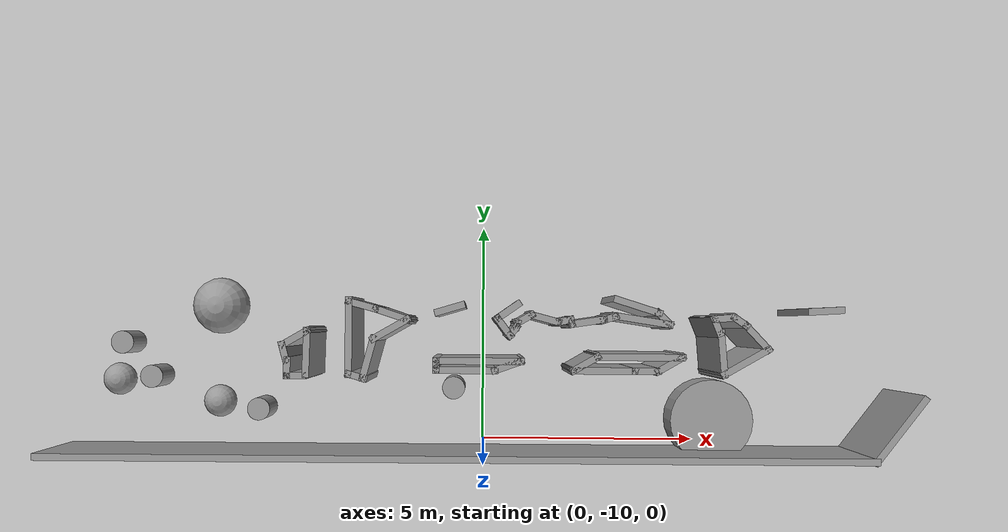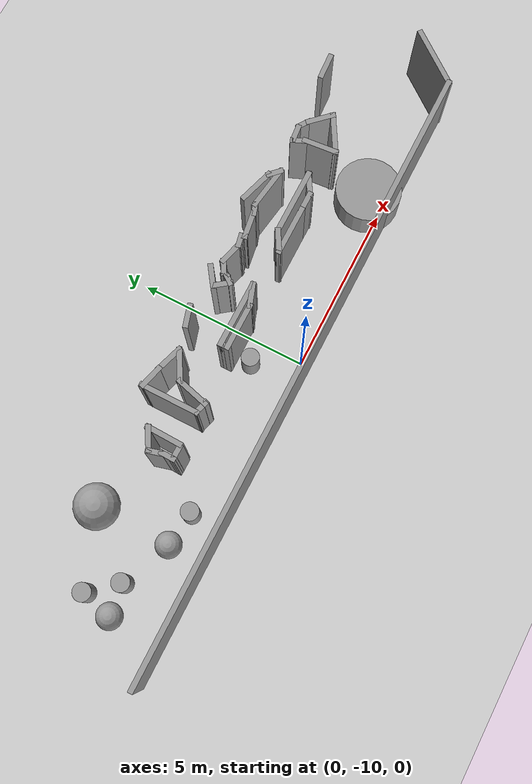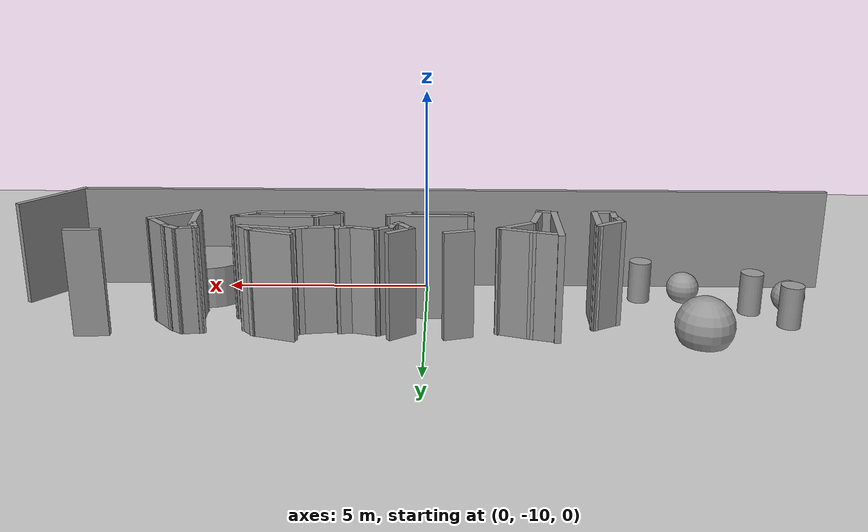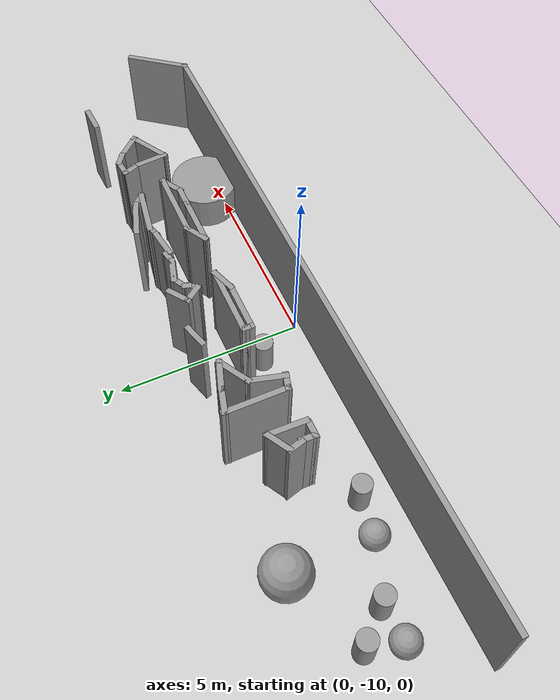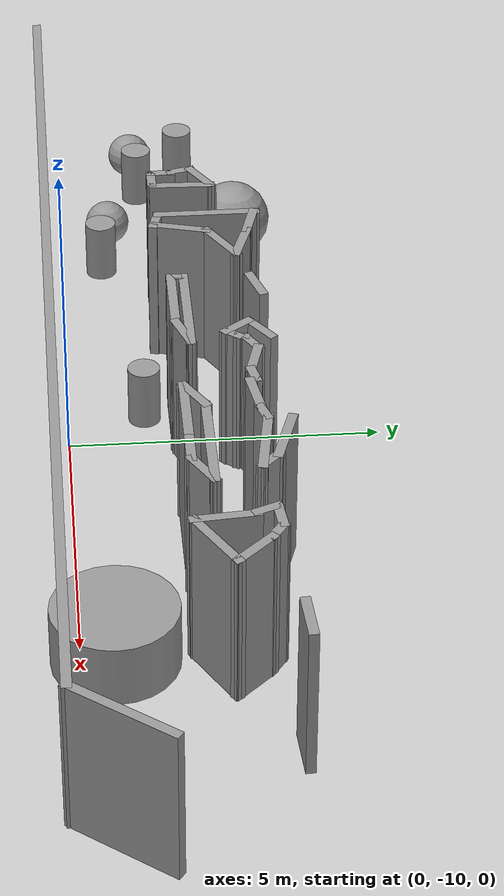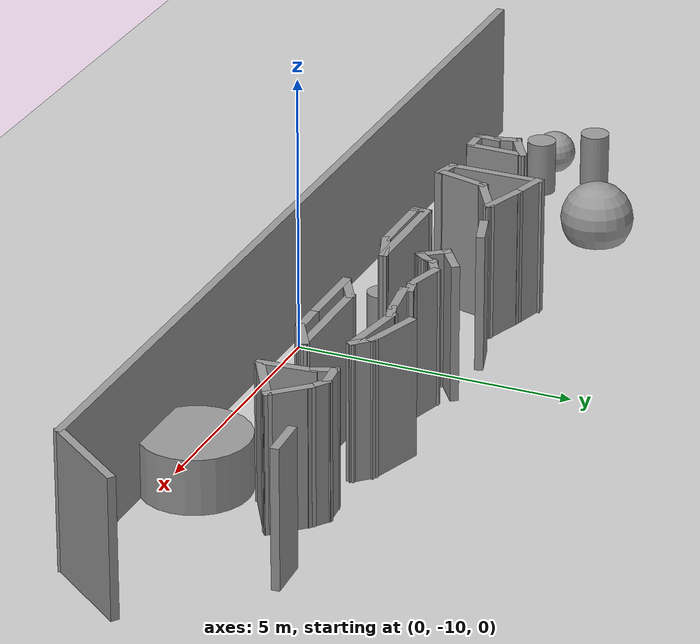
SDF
<sdf version="1.7">
 <world name="default">
  <model name="ground_plane">
   <static>1</static>
   <link name="link">
    <collision name="collision">
     <geometry><plane><normal>0 0 1</normal><size>100 100</size></plane></geometry>
     <surface>
      <contact><collide_bitmask>65535</collide_bitmask></contact>
      <friction><ode><mu>100</mu><mu2>50</mu2></ode></friction>
     </surface>
    </collision>
    <visual name="visual">
     <cast_shadows>0</cast_shadows>
     <geometry><plane><normal>0 0 1</normal><size>100 100</size></plane></geometry>
     <material>
      <script><uri>file://media/materials/scripts/gazebo.material</uri><name>Gazebo/Grey</name></script>
     </material>
    </visual>
   </link>
  </model>
  <model name="Untitled">
   <pose>-0.048209 -0.510974 0 0 -0 0</pose>
   <link name="Wall_103">
    <collision name="Wall_103_Collision">
     <geometry><box><size>0.488036 0.15 2.5</size></box></geometry>
     <pose>0 0 1.25 0 -0 0</pose>
    </collision>
    <visual name="Wall_103_Visual">
     <pose>0 0 1.25 0 -0 0</pose>
     <geometry><box><size>0.488036 0.15 2.5</size></box></geometry>
     <material>
      <script><uri>file://media/materials/scripts/gazebo.material</uri><name>Gazebo/Grey</name></script>
      <ambient>1 1 1 1</ambient>
     </material>
     <meta><layer>0</layer></meta>
    </visual>
    <pose>-4.23485 -7.73922 0 0 -0 -1.59502</pose>
   </link>
   <link name="Wall_109">
    <collision name="Wall_109_Collision">
     <geometry><box><size>1.0417 0.15 2.5</size></box></geometry>
     <pose>0 0 1.25 0 -0 0</pose>
    </collision>
    <visual name="Wall_109_Visual">
     <pose>0 0 1.25 0 -0 0</pose>
     <geometry><box><size>1.0417 0.15 2.5</size></box></geometry>
     <material>
      <script><uri>file://media/materials/scripts/gazebo.material</uri><name>Gazebo/Grey</name></script>
      <ambient>1 1 1 1</ambient>
     </material>
     <meta><layer>0</layer></meta>
    </visual>
    <pose>-2.47028 -7.52497 0 0 -0 -1.83459</pose>
   </link>
   <link name="Wall_11">
    <collision name="Wall_11_Collision">
     <geometry><box><size>18.5 0.15 2.5</size></box></geometry>
     <pose>0 0 1.25 0 -0 0</pose>
    </collision>
    <visual name="Wall_11_Visual">
     <pose>0 0 1.25 0 -0 0</pose>
     <geometry><box><size>18.5 0.15 2.5</size></box></geometry>
     <material>
      <script><uri>file://media/materials/scripts/gazebo.material</uri><name>Gazebo/Grey</name></script>
      <ambient>1 1 1 1</ambient>
     </material>
     <meta><layer>0</layer></meta>
    </visual>
    <pose>-0.53701 -9.71572 0 0 -0 3.14159</pose>
   </link>
   <link name="Wall_110">
    <collision name="Wall_110_Collision">
     <geometry><box><size>0.5 0.15 2.5</size></box></geometry>
     <pose>0 0 1.25 0 -0 0</pose>
    </collision>
    <visual name="Wall_110_Visual">
     <pose>0 0 1.25 0 -0 0</pose>
     <geometry><box><size>0.5 0.15 2.5</size></box></geometry>
     <material>
      <script><uri>file://media/materials/scripts/gazebo.material</uri><name>Gazebo/Grey</name></script>
      <ambient>1 1 1 1</ambient>
     </material>
     <meta><layer>0</layer></meta>
    </visual>
    <pose>-2.72574 -7.9101 0 0 -0 2.87979</pose>
   </link>
   <link name="Wall_111">
    <collision name="Wall_111_Collision">
     <geometry><box><size>1.76019 0.15 2.5</size></box></geometry>
     <pose>0 0 1.25 0 -0 0</pose>
    </collision>
    <visual name="Wall_111_Visual">
     <pose>0 0 1.25 0 -0 0</pose>
     <geometry><box><size>1.76019 0.15 2.5</size></box></geometry>
     <material>
      <script><uri>file://media/materials/scripts/gazebo.material</uri><name>Gazebo/Grey</name></script>
      <ambient>1 1 1 1</ambient>
     </material>
     <meta><layer>0</layer></meta>
    </visual>
    <pose>-2.89443 -7.05971 0 0 -0 1.57037</pose>
   </link>
   <link name="Wall_113">
    <collision name="Wall_113_Collision">
     <geometry><box><size>1 0.15 2.5</size></box></geometry>
     <pose>0 0 1.25 0 -0 0</pose>
    </collision>
    <visual name="Wall_113_Visual">
     <pose>0 0 1.25 0 -0 0</pose>
     <geometry><box><size>1 0.15 2.5</size></box></geometry>
     <material>
      <script><uri>file://media/materials/scripts/gazebo.material</uri><name>Gazebo/Grey</name></script>
      <ambient>1 1 1 1</ambient>
     </material>
     <meta><layer>0</layer></meta>
    </visual>
    <pose>-1.98596 -6.88204 0 0 -0 -2.61799</pose>
   </link>
   <link name="Wall_120">
    <collision name="Wall_120_Collision">
     <geometry><box><size>0.25 0.15 2.5</size></box></geometry>
     <pose>0 0 1.25 0 -0 0</pose>
    </collision>
    <visual name="Wall_120_Visual">
     <pose>0 0 1.25 0 -0 0</pose>
     <geometry><box><size>0.25 0.15 2.5</size></box></geometry>
     <material>
      <script><uri>file://media/materials/scripts/gazebo.material</uri><name>Gazebo/Grey</name></script>
      <ambient>1 1 1 1</ambient>
     </material>
     <meta><layer>0</layer></meta>
    </visual>
    <pose>-0.982432 -7.71789 0 0 -0 1.5708</pose>
   </link>
   <link name="Wall_121">
    <collision name="Wall_121_Collision">
     <geometry><box><size>0.25 0.15 2.5</size></box></geometry>
     <pose>0 0 1.25 0 -0 0</pose>
    </collision>
    <visual name="Wall_121_Visual">
     <pose>0 0 1.25 0 -0 0</pose>
     <geometry><box><size>0.25 0.15 2.5</size></box></geometry>
     <material>
      <script><uri>file://media/materials/scripts/gazebo.material</uri><name>Gazebo/Grey</name></script>
      <ambient>1 1 1 1</ambient>
     </material>
     <meta><layer>0</layer></meta>
    </visual>
    <pose>-0.982432 -7.61789 0 0 -0 1.5708</pose>
   </link>
   <link name="Wall_122">
    <collision name="Wall_122_Collision">
     <geometry><box><size>2 0.15 2.5</size></box></geometry>
     <pose>0 0 1.25 0 -0 0</pose>
    </collision>
    <visual name="Wall_122_Visual">
     <pose>0 0 1.25 0 -0 0</pose>
     <geometry><box><size>2 0.15 2.5</size></box></geometry>
     <material>
      <script><uri>file://media/materials/scripts/gazebo.material</uri><name>Gazebo/Grey</name></script>
      <ambient>1 1 1 1</ambient>
     </material>
     <meta><layer>0</layer></meta>
    </visual>
    <pose>-0.057432 -7.56789 0 0 -0 0</pose>
   </link>
   <link name="Wall_123">
    <collision name="Wall_123_Collision">
     <geometry><box><size>0.753289 0.15 2.5</size></box></geometry>
     <pose>0 0 1.25 0 -0 0</pose>
    </collision>
    <visual name="Wall_123_Visual">
     <pose>0 0 1.25 0 -0 0</pose>
     <geometry><box><size>0.753289 0.15 2.5</size></box></geometry>
     <material>
      <script><uri>file://media/materials/scripts/gazebo.material</uri><name>Gazebo/Grey</name></script>
      <ambient>1 1 1 1</ambient>
     </material>
     <meta><layer>0</layer></meta>
    </visual>
    <pose>0.582982 -7.66789 0 0 -0 -2.80368</pose>
   </link>
   <link name="Wall_125">
    <collision name="Wall_125_Collision">
     <geometry><box><size>0.75 0.15 2.5</size></box></geometry>
     <pose>0 0 1.25 0 -0 0</pose>
    </collision>
    <visual name="Wall_125_Visual">
     <pose>0 0 1.25 0 -0 0</pose>
     <geometry><box><size>0.75 0.15 2.5</size></box></geometry>
     <material>
      <script><uri>file://media/materials/scripts/gazebo.material</uri><name>Gazebo/Grey</name></script>
      <ambient>1 1 1 1</ambient>
     </material>
     <meta><layer>0</layer></meta>
    </visual>
    <pose>2.27315 -7.61311 0 0 -0 0.523599</pose>
   </link>
   <link name="Wall_126">
    <collision name="Wall_126_Collision">
     <geometry><box><size>2 0.15 2.5</size></box></geometry>
     <pose>0 0 1.25 0 -0 0</pose>
    </collision>
    <visual name="Wall_126_Visual">
     <pose>0 0 1.25 0 -0 0</pose>
     <geometry><box><size>2 0.15 2.5</size></box></geometry>
     <material>
      <script><uri>file://media/materials/scripts/gazebo.material</uri><name>Gazebo/Grey</name></script>
      <ambient>1 1 1 1</ambient>
     </material>
     <meta><layer>0</layer></meta>
    </visual>
    <pose>3.45796 -7.46311 0 0 -0 0</pose>
   </link>
   <link name="Wall_127">
    <collision name="Wall_127_Collision">
     <geometry><box><size>0.75 0.15 2.5</size></box></geometry>
     <pose>0 0 1.25 0 -0 0</pose>
    </collision>
    <visual name="Wall_127_Visual">
     <pose>0 0 1.25 0 -0 0</pose>
     <geometry><box><size>0.75 0.15 2.5</size></box></geometry>
     <material>
      <script><uri>file://media/materials/scripts/gazebo.material</uri><name>Gazebo/Grey</name></script>
      <ambient>1 1 1 1</ambient>
     </material>
     <meta><layer>0</layer></meta>
    </visual>
    <pose>4.12315 -7.61311 0 0 -0 -2.61799</pose>
   </link>
   <link name="Wall_128">
    <collision name="Wall_128_Collision">
     <geometry><box><size>0.65 0.15 2.5</size></box></geometry>
     <pose>0 0 1.25 0 -0 0</pose>
    </collision>
    <visual name="Wall_128_Visual">
     <pose>0 0 1.25 0 -0 0</pose>
     <geometry><box><size>0.65 0.15 2.5</size></box></geometry>
     <material>
      <script><uri>file://media/materials/scripts/gazebo.material</uri><name>Gazebo/Grey</name></script>
      <ambient>1 1 1 1</ambient>
     </material>
     <meta><layer>0</layer></meta>
    </visual>
    <pose>3.61334 -7.76311 0 0 -0 3.14159</pose>
   </link>
   <link name="Wall_14">
    <collision name="Wall_14_Collision">
     <geometry><box><size>1.5 0.15 2.5</size></box></geometry>
     <pose>0 0 1.25 0 -0 0</pose>
    </collision>
    <visual name="Wall_14_Visual">
     <pose>0 0 1.25 0 -0 0</pose>
     <geometry><box><size>1.5 0.15 2.5</size></box></geometry>
     <material>
      <script><uri>file://media/materials/scripts/gazebo.material</uri><name>Gazebo/Grey</name></script>
      <ambient>1 1 1 1</ambient>
     </material>
     <meta><layer>0</layer></meta>
    </visual>
    <pose>2.68834 -7.76311 0 0 -0 0</pose>
   </link>
   <link name="Wall_140">
    <collision name="Wall_140_Collision">
     <geometry><box><size>0.45593 0.15 2.5</size></box></geometry>
     <pose>0 0 1.25 0 -0 0</pose>
    </collision>
    <visual name="Wall_140_Visual">
     <pose>0 0 1.25 0 -0 0</pose>
     <geometry><box><size>0.45593 0.15 2.5</size></box></geometry>
     <material>
      <script><uri>file://media/materials/scripts/gazebo.material</uri><name>Gazebo/Grey</name></script>
      <ambient>1 1 1 1</ambient>
     </material>
     <meta><layer>0</layer></meta>
    </visual>
    <pose>5.64164 -6.67189 0 0 -0 2.53262</pose>
   </link>
   <link name="Wall_145">
    <collision name="Wall_145_Collision">
     <geometry><box><size>0.542134 0.15 2.5</size></box></geometry>
     <pose>0 0 1.25 0 -0 0</pose>
    </collision>
    <visual name="Wall_145_Visual">
     <pose>0 0 1.25 0 -0 0</pose>
     <geometry><box><size>0.542134 0.15 2.5</size></box></geometry>
     <material>
      <script><uri>file://media/materials/scripts/gazebo.material</uri><name>Gazebo/Grey</name></script>
      <ambient>1 1 1 1</ambient>
     </material>
     <meta><layer>0</layer></meta>
    </visual>
    <pose>5.29497 -6.6036 0 0 -0 -3.04348</pose>
   </link>
   <link name="Wall_146">
    <collision name="Wall_146_Collision">
     <geometry><box><size>0.477049 0.15 2.5</size></box></geometry>
     <pose>0 0 1.25 0 -0 0</pose>
    </collision>
    <visual name="Wall_146_Visual">
     <pose>0 0 1.25 0 -0 0</pose>
     <geometry><box><size>0.477049 0.15 2.5</size></box></geometry>
     <material>
      <script><uri>file://media/materials/scripts/gazebo.material</uri><name>Gazebo/Grey</name></script>
      <ambient>1 1 1 1</ambient>
     </material>
     <meta><layer>0</layer></meta>
    </visual>
    <pose>5.13517 -6.77435 0 0 -0 -1.1858</pose>
   </link>
   <link name="Wall_147">
    <collision name="Wall_147_Collision">
     <geometry><box><size>1.05556 0.15 2.5</size></box></geometry>
     <pose>0 0 1.25 0 -0 0</pose>
    </collision>
    <visual name="Wall_147_Visual">
     <pose>0 0 1.25 0 -0 0</pose>
     <geometry><box><size>1.05556 0.15 2.5</size></box></geometry>
     <material>
      <script><uri>file://media/materials/scripts/gazebo.material</uri><name>Gazebo/Grey</name></script>
      <ambient>1 1 1 1</ambient>
     </material>
     <meta><layer>0</layer></meta>
    </visual>
    <pose>5.2618 -7.377 0 0 -0 -1.48427</pose>
   </link>
   <link name="Wall_148">
    <collision name="Wall_148_Collision">
     <geometry><box><size>1.25 0.15 2.5</size></box></geometry>
     <pose>0 0 1.25 0 -0 0</pose>
    </collision>
    <visual name="Wall_148_Visual">
     <pose>0 0 1.25 0 -0 0</pose>
     <geometry><box><size>1.25 0.15 2.5</size></box></geometry>
     <material>
      <script><uri>file://media/materials/scripts/gazebo.material</uri><name>Gazebo/Grey</name></script>
      <ambient>1 1 1 1</ambient>
     </material>
     <meta><layer>0</layer></meta>
    </visual>
    <pose>5.77724 -7.55308 0 0 -0 0.523599</pose>
   </link>
   <link name="Wall_159">
    <collision name="Wall_159_Collision">
     <geometry><box><size>0.692591 0.15 2.5</size></box></geometry>
     <pose>0 0 1.25 0 -0 0</pose>
    </collision>
    <visual name="Wall_159_Visual">
     <pose>0 0 1.25 0 -0 0</pose>
     <geometry><box><size>0.692591 0.15 2.5</size></box></geometry>
     <material>
      <script><uri>file://media/materials/scripts/gazebo.material</uri><name>Gazebo/Grey</name></script>
      <ambient>1 1 1 1</ambient>
     </material>
     <meta><layer>0</layer></meta>
    </visual>
    <pose>-0.694153 -6.4286 0 0 -0 0.290262</pose>
   </link>
   <link name="Wall_164">
    <collision name="Wall_164_Collision">
     <geometry><box><size>0.611635 0.15 2.5</size></box></geometry>
     <pose>0 0 1.25 0 -0 0</pose>
    </collision>
    <visual name="Wall_164_Visual">
     <pose>0 0 1.25 0 -0 0</pose>
     <geometry><box><size>0.611635 0.15 2.5</size></box></geometry>
     <material>
      <script><uri>file://media/materials/scripts/gazebo.material</uri><name>Gazebo/Grey</name></script>
      <ambient>1 1 1 1</ambient>
     </material>
     <meta><layer>0</layer></meta>
    </visual>
    <pose>0.490586 -6.82526 0 0 -0 -0.928742</pose>
   </link>
   <link name="Wall_165">
    <collision name="Wall_165_Collision">
     <geometry><box><size>0.385134 0.15 2.5</size></box></geometry>
     <pose>0 0 1.25 0 -0 0</pose>
    </collision>
    <visual name="Wall_165_Visual">
     <pose>0 0 1.25 0 -0 0</pose>
     <geometry><box><size>0.385134 0.15 2.5</size></box></geometry>
     <material>
      <script><uri>file://media/materials/scripts/gazebo.material</uri><name>Gazebo/Grey</name></script>
      <ambient>1 1 1 1</ambient>
     </material>
     <meta><layer>0</layer></meta>
    </visual>
    <pose>0.691599 -6.91768 0 0 -0 0.904641</pose>
   </link>
   <link name="Wall_166">
    <collision name="Wall_166_Collision">
     <geometry><box><size>0.25 0.15 2.5</size></box></geometry>
     <pose>0 0 1.25 0 -0 0</pose>
    </collision>
    <visual name="Wall_166_Visual">
     <pose>0 0 1.25 0 -0 0</pose>
     <geometry><box><size>0.25 0.15 2.5</size></box></geometry>
     <material>
      <script><uri>file://media/materials/scripts/gazebo.material</uri><name>Gazebo/Grey</name></script>
      <ambient>1 1 1 1</ambient>
     </material>
     <meta><layer>0</layer></meta>
    </visual>
    <pose>0.777192 -6.77696 0 0 -0 1.309</pose>
   </link>
   <link name="Wall_167">
    <collision name="Wall_167_Collision">
     <geometry><box><size>0.5 0.15 2.5</size></box></geometry>
     <pose>0 0 1.25 0 -0 0</pose>
    </collision>
    <visual name="Wall_167_Visual">
     <pose>0 0 1.25 0 -0 0</pose>
     <geometry><box><size>0.5 0.15 2.5</size></box></geometry>
     <material>
      <script><uri>file://media/materials/scripts/gazebo.material</uri><name>Gazebo/Grey</name></script>
      <ambient>1 1 1 1</ambient>
     </material>
     <meta><layer>0</layer></meta>
    </visual>
    <pose>0.941688 -6.64116 0 0 -0 0.523599</pose>
   </link>
   <link name="Wall_168">
    <collision name="Wall_168_Collision">
     <geometry><box><size>0.75 0.15 2.5</size></box></geometry>
     <pose>0 0 1.25 0 -0 0</pose>
    </collision>
    <visual name="Wall_168_Visual">
     <pose>0 0 1.25 0 -0 0</pose>
     <geometry><box><size>0.75 0.15 2.5</size></box></geometry>
     <material>
      <script><uri>file://media/materials/scripts/gazebo.material</uri><name>Gazebo/Grey</name></script>
      <ambient>1 1 1 1</ambient>
     </material>
     <meta><layer>0</layer></meta>
    </visual>
    <pose>1.38302 -6.63131 0 0 -0 -0.261799</pose>
   </link>
   <link name="Wall_169">
    <collision name="Wall_169_Collision">
     <geometry><box><size>0.426039 0.15 2.5</size></box></geometry>
     <pose>0 0 1.25 0 -0 0</pose>
    </collision>
    <visual name="Wall_169_Visual">
     <pose>0 0 1.25 0 -0 0</pose>
     <geometry><box><size>0.426039 0.15 2.5</size></box></geometry>
     <material>
      <script><uri>file://media/materials/scripts/gazebo.material</uri><name>Gazebo/Grey</name></script>
      <ambient>1 1 1 1</ambient>
     </material>
     <meta><layer>0</layer></meta>
    </visual>
    <pose>1.80802 -6.6813 0 0 -0 0.201667</pose>
   </link>
   <link name="Wall_170">
    <collision name="Wall_170_Collision">
     <geometry><box><size>0.25 0.15 2.5</size></box></geometry>
     <pose>0 0 1.25 0 -0 0</pose>
    </collision>
    <visual name="Wall_170_Visual">
     <pose>0 0 1.25 0 -0 0</pose>
     <geometry><box><size>0.25 0.15 2.5</size></box></geometry>
     <material>
      <script><uri>file://media/materials/scripts/gazebo.material</uri><name>Gazebo/Grey</name></script>
      <ambient>1 1 1 1</ambient>
     </material>
     <meta><layer>0</layer></meta>
    </visual>
    <pose>1.95618 -6.70195 0 0 -0 -1.309</pose>
   </link>
   <link name="Wall_171">
    <collision name="Wall_171_Collision">
     <geometry><box><size>0.854898 0.15 2.5</size></box></geometry>
     <pose>0 0 1.25 0 -0 0</pose>
    </collision>
    <visual name="Wall_171_Visual">
     <pose>0 0 1.25 0 -0 0</pose>
     <geometry><box><size>0.854898 0.15 2.5</size></box></geometry>
     <material>
      <script><uri>file://media/materials/scripts/gazebo.material</uri><name>Gazebo/Grey</name></script>
      <ambient>1 1 1 1</ambient>
     </material>
     <meta><layer>0</layer></meta>
    </visual>
    <pose>2.3176 -6.69746 0 0 -0 0.150344</pose>
   </link>
   <link name="Wall_172">
    <collision name="Wall_172_Collision">
     <geometry><box><size>0.416595 0.15 2.5</size></box></geometry>
     <pose>0 0 1.25 0 -0 0</pose>
    </collision>
    <visual name="Wall_172_Visual">
     <pose>0 0 1.25 0 -0 0</pose>
     <geometry><box><size>0.416595 0.15 2.5</size></box></geometry>
     <material>
      <script><uri>file://media/materials/scripts/gazebo.material</uri><name>Gazebo/Grey</name></script>
      <ambient>1 1 1 1</ambient>
     </material>
     <meta><layer>0</layer></meta>
    </visual>
    <pose>2.79296 -6.61689 0 0 -0 0.31126</pose>
   </link>
   <link name="Wall_192">
    <collision name="Wall_192_Collision">
     <geometry><box><size>0.5 0.15 2.5</size></box></geometry>
     <pose>0 0 1.25 0 -0 0</pose>
    </collision>
    <visual name="Wall_192_Visual">
     <pose>0 0 1.25 0 -0 0</pose>
     <geometry><box><size>0.5 0.15 2.5</size></box></geometry>
     <material>
      <script><uri>file://media/materials/scripts/gazebo.material</uri><name>Gazebo/Grey</name></script>
      <ambient>1 1 1 1</ambient>
     </material>
     <meta><layer>0</layer></meta>
    </visual>
    <pose>-4.2986 -7.40121 0 0 -0 1.8326</pose>
   </link>
   <link name="Wall_193">
    <collision name="Wall_193_Collision">
     <geometry><box><size>0.75 0.15 2.5</size></box></geometry>
     <pose>0 0 1.25 0 -0 0</pose>
    </collision>
    <visual name="Wall_193_Visual">
     <pose>0 0 1.25 0 -0 0</pose>
     <geometry><box><size>0.75 0.15 2.5</size></box></geometry>
     <material>
      <script><uri>file://media/materials/scripts/gazebo.material</uri><name>Gazebo/Grey</name></script>
      <ambient>1 1 1 1</ambient>
     </material>
     <meta><layer>0</layer></meta>
    </visual>
    <pose>-4.06153 -7.08218 0 0 -0 0.523599</pose>
   </link>
   <link name="Wall_194">
    <collision name="Wall_194_Collision">
     <geometry><box><size>1.09596 0.15 2.5</size></box></geometry>
     <pose>0 0 1.25 0 -0 0</pose>
    </collision>
    <visual name="Wall_194_Visual">
     <pose>0 0 1.25 0 -0 0</pose>
     <geometry><box><size>1.09596 0.15 2.5</size></box></geometry>
     <material>
      <script><uri>file://media/materials/scripts/gazebo.material</uri><name>Gazebo/Grey</name></script>
      <ambient>1 1 1 1</ambient>
     </material>
     <meta><layer>0</layer></meta>
    </visual>
    <pose>-3.81491 -7.40497 0 0 -0 -1.59869</pose>
   </link>
   <link name="Wall_195">
    <collision name="Wall_195_Collision">
     <geometry><box><size>0.5 0.15 2.5</size></box></geometry>
     <pose>0 0 1.25 0 -0 0</pose>
    </collision>
    <visual name="Wall_195_Visual">
     <pose>0 0 1.25 0 -0 0</pose>
     <geometry><box><size>0.5 0.15 2.5</size></box></geometry>
     <material>
      <script><uri>file://media/materials/scripts/gazebo.material</uri><name>Gazebo/Grey</name></script>
      <ambient>1 1 1 1</ambient>
     </material>
     <meta><layer>0</layer></meta>
    </visual>
    <pose>-4.06394 -7.90819 0 0 -0 3.14159</pose>
   </link>
   <link name="Wall_196">
    <collision name="Wall_196_Collision">
     <geometry><box><size>0.15 0.15 2.5</size></box></geometry>
     <pose>0 0 1.25 0 -0 0</pose>
    </collision>
    <visual name="Wall_196_Visual">
     <pose>0 0 1.25 0 -0 0</pose>
     <geometry><box><size>0.15 0.15 2.5</size></box></geometry>
     <material>
      <script><uri>file://media/materials/scripts/gazebo.material</uri><name>Gazebo/Grey</name></script>
      <ambient>1 1 1 1</ambient>
     </material>
     <meta><layer>0</layer></meta>
    </visual>
    <pose>-4.23894 -7.90819 0 0 -0 0</pose>
   </link>
   <link name="Wall_226">
    <collision name="Wall_226_Collision">
     <geometry><box><size>0.794934 0.15 2.5</size></box></geometry>
     <pose>0 0 1.25 0 -0 0</pose>
    </collision>
    <visual name="Wall_226_Visual">
     <pose>0 0 1.25 0 -0 0</pose>
     <geometry><box><size>0.794934 0.15 2.5</size></box></geometry>
     <material>
      <script><uri>file://media/materials/scripts/gazebo.material</uri><name>Gazebo/Grey</name></script>
      <ambient>1 1 1 1</ambient>
     </material>
     <meta><layer>0</layer></meta>
    </visual>
    <pose>7.51097 -6.42829 0 0 -0 0.055991</pose>
   </link>
   <link name="Wall_246">
    <collision name="Wall_246_Collision">
     <geometry><box><size>1.86569 0.15 2.5</size></box></geometry>
     <pose>0 0 1.25 0 -0 0</pose>
    </collision>
    <visual name="Wall_246_Visual">
     <pose>0 0 1.25 0 -0 0</pose>
     <geometry><box><size>1.86569 0.15 2.5</size></box></geometry>
     <material>
      <script><uri>file://media/materials/scripts/gazebo.material</uri><name>Gazebo/Grey</name></script>
      <ambient>1 1 1 1</ambient>
     </material>
     <meta><layer>0</layer></meta>
    </visual>
    <pose>9.15992 -9.03492 0 0 -0 0.916723</pose>
   </link>
   <link name="Wall_254">
    <collision name="Wall_254_Collision">
     <geometry><box><size>1.11014 0.15 2.5</size></box></geometry>
     <pose>0 0 1.25 0 -0 0</pose>
    </collision>
    <visual name="Wall_254_Visual">
     <pose>0 0 1.25 0 -0 0</pose>
     <geometry><box><size>1.11014 0.15 2.5</size></box></geometry>
     <material>
      <script><uri>file://media/materials/scripts/gazebo.material</uri><name>Gazebo/Grey</name></script>
      <ambient>1 1 1 1</ambient>
     </material>
     <meta><layer>0</layer></meta>
    </visual>
    <pose>3.41216 -6.353 0 0 -0 -0.305778</pose>
   </link>
   <link name="Wall_47">
    <collision name="Wall_47_Collision">
     <geometry><box><size>1.43083 0.15 2.5</size></box></geometry>
     <pose>0 0 1.25 0 -0 0</pose>
    </collision>
    <visual name="Wall_47_Visual">
     <pose>0 0 1.25 0 -0 0</pose>
     <geometry><box><size>1.43083 0.15 2.5</size></box></geometry>
     <material>
      <script><uri>file://media/materials/scripts/gazebo.material</uri><name>Gazebo/Grey</name></script>
      <ambient>1 1 1 1</ambient>
     </material>
     <meta><layer>0</layer></meta>
    </visual>
    <pose>-0.342018 -7.76789 0 0 -0 3.14159</pose>
   </link>
   <link name="Wall_58">
    <collision name="Wall_58_Collision">
     <geometry><box><size>0.75 0.15 2.5</size></box></geometry>
     <pose>0 0 1.25 0 -0 0</pose>
    </collision>
    <visual name="Wall_58_Visual">
     <pose>0 0 1.25 0 -0 0</pose>
     <geometry><box><size>0.75 0.15 2.5</size></box></geometry>
     <material>
      <script><uri>file://media/materials/scripts/gazebo.material</uri><name>Gazebo/Grey</name></script>
      <ambient>1 1 1 1</ambient>
     </material>
     <meta><layer>0</layer></meta>
    </visual>
    <pose>-2.60431 -6.3621 0 0 -0 -0.261799</pose>
   </link>
   <link name="Wall_59">
    <collision name="Wall_59_Collision">
     <geometry><box><size>0.883556 0.15 2.5</size></box></geometry>
     <pose>0 0 1.25 0 -0 0</pose>
    </collision>
    <visual name="Wall_59_Visual">
     <pose>0 0 1.25 0 -0 0</pose>
     <geometry><box><size>0.883556 0.15 2.5</size></box></geometry>
     <material>
      <script><uri>file://media/materials/scripts/gazebo.material</uri><name>Gazebo/Grey</name></script>
      <ambient>1 1 1 1</ambient>
     </material>
     <meta><layer>0</layer></meta>
    </visual>
    <pose>-1.96622 -6.55464 0 0 -0 -0.318622</pose>
   </link>
   <link name="Wall_64">
    <collision name="Wall_64_Collision">
     <geometry><box><size>1.34844 0.15 2.5</size></box></geometry>
     <pose>0 0 1.25 0 -0 0</pose>
    </collision>
    <visual name="Wall_64_Visual">
     <pose>0 0 1.25 0 -0 0</pose>
     <geometry><box><size>1.34844 0.15 2.5</size></box></geometry>
     <material>
      <script><uri>file://media/materials/scripts/gazebo.material</uri><name>Gazebo/Grey</name></script>
      <ambient>1 1 1 1</ambient>
     </material>
     <meta><layer>0</layer></meta>
    </visual>
    <pose>3.51213 -6.65402 0 0 -0 2.98915</pose>
   </link>
   <link name="Wall_66">
    <collision name="Wall_66_Collision">
     <geometry><box><size>0.703411 0.15 2.5</size></box></geometry>
     <pose>0 0 1.25 0 -0 0</pose>
    </collision>
    <visual name="Wall_66_Visual">
     <pose>0 0 1.25 0 -0 0</pose>
     <geometry><box><size>0.703411 0.15 2.5</size></box></geometry>
     <material>
      <script><uri>file://media/materials/scripts/gazebo.material</uri><name>Gazebo/Grey</name></script>
      <ambient>1 1 1 1</ambient>
     </material>
     <meta><layer>0</layer></meta>
    </visual>
    <pose>0.569343 -6.48195 0 0 -0 0.609734</pose>
   </link>
   <link name="Wall_68">
    <collision name="Wall_68_Collision">
     <geometry><box><size>0.5 0.15 2.5</size></box></geometry>
     <pose>0 0 1.25 0 -0 0</pose>
    </collision>
    <visual name="Wall_68_Visual">
     <pose>0 0 1.25 0 -0 0</pose>
     <geometry><box><size>0.5 0.15 2.5</size></box></geometry>
     <material>
      <script><uri>file://media/materials/scripts/gazebo.material</uri><name>Gazebo/Grey</name></script>
      <ambient>1 1 1 1</ambient>
     </material>
     <meta><layer>0</layer></meta>
    </visual>
    <pose>3.98066 -6.62127 0 0 -0 -0.785398</pose>
   </link>
   <link name="Wall_70">
    <collision name="Wall_70_Collision">
     <geometry><box><size>0.861107 0.15 2.5</size></box></geometry>
     <pose>0 0 1.25 0 -0 0</pose>
    </collision>
    <visual name="Wall_70_Visual">
     <pose>0 0 1.25 0 -0 0</pose>
     <geometry><box><size>0.861107 0.15 2.5</size></box></geometry>
     <material>
      <script><uri>file://media/materials/scripts/gazebo.material</uri><name>Gazebo/Grey</name></script>
      <ambient>1 1 1 1</ambient>
     </material>
     <meta><layer>0</layer></meta>
    </visual>
    <pose>6.01033 -7.01874 0 0 -0 -0.817473</pose>
   </link>
   <static>1</static>
  </model>
  <model name="unit_cylinder">
   <pose>5.2885 -9.48486 0.499991 0 -0 0</pose>
   <link name="link">
    <inertial>
     <mass>1</mass>
     <inertia><ixx>0.145833</ixx><ixy>0</ixy><ixz>0</ixz><iyy>0.145833</iyy><iyz>0</iyz><izz>0.125</izz></inertia>
    </inertial>
    <collision name="collision">
     <geometry><cylinder><radius>0.957606</radius><length>1</length></cylinder></geometry>
    </collision>
    <visual name="visual">
     <geometry><cylinder><radius>0.957606</radius><length>1</length></cylinder></geometry>
     <material>
      <script><name>Gazebo/Grey</name><uri>file://media/materials/scripts/gazebo.material</uri></script>
     </material>
    </visual>
   </link>
  </model>
  <model name="unit_cylinder_clone">
   <pose>-0.681723 -8.7513 0.499991 0 -0 0</pose>
   <link name="link">
    <inertial>
     <mass>1</mass>
     <inertia><ixx>0.145833</ixx><ixy>0</ixy><ixz>0</ixz><iyy>0.145833</iyy><iyz>0</iyz><izz>0.125</izz></inertia>
    </inertial>
    <collision name="collision">
     <geometry><cylinder><radius>0.261067</radius><length>1</length></cylinder></geometry>
    </collision>
    <visual name="visual">
     <geometry><cylinder><radius>0.261067</radius><length>1</length></cylinder></geometry>
     <material>
      <script><name>Gazebo/Grey</name><uri>file://media/materials/scripts/gazebo.material</uri></script>
     </material>
    </visual>
   </link>
  </model>
  <model name="unit_cylinder_clone_0">
   <pose>-5.18901 -9.27129 0.499999 0 -0 1e-06</pose>
   <link name="link">
    <inertial>
     <mass>1</mass>
     <inertia><ixx>0.145833</ixx><ixy>0</ixy><ixz>0</ixz><iyy>0.145833</iyy><iyz>0</iyz><izz>0.125</izz></inertia>
    </inertial>
    <collision name="collision">
     <geometry><cylinder><radius>0.261067</radius><length>1</length></cylinder></geometry>
    </collision>
    <visual name="visual">
     <geometry><cylinder><radius>0.261067</radius><length>1</length></cylinder></geometry>
     <material>
      <script><name>Gazebo/Grey</name><uri>file://media/materials/scripts/gazebo.material</uri></script>
     </material>
    </visual>
   </link>
  </model>
  <model name="unit_cylinder_clone_3">
   <pose>-8.34604 -7.74259 0.499999 0 -0 1e-06</pose>
   <link name="link">
    <inertial>
     <mass>1</mass>
     <inertia><ixx>0.145833</ixx><ixy>0</ixy><ixz>0</ixz><iyy>0.145833</iyy><iyz>0</iyz><izz>0.125</izz></inertia>
    </inertial>
    <collision name="collision">
     <geometry><cylinder><radius>0.261067</radius><length>1</length></cylinder></geometry>
    </collision>
    <visual name="visual">
     <geometry><cylinder><radius>0.261067</radius><length>1</length></cylinder></geometry>
     <material>
      <script><name>Gazebo/Grey</name><uri>file://media/materials/scripts/gazebo.material</uri></script>
     </material>
    </visual>
   </link>
  </model>
  <model name="unit_cylinder_clone_4">
   <pose>-7.66634 -8.53035 0.499999 0 -0 1e-06</pose>
   <link name="link">
    <inertial>
     <mass>1</mass>
     <inertia><ixx>0.145833</ixx><ixy>0</ixy><ixz>0</ixz><iyy>0.145833</iyy><iyz>0</iyz><izz>0.125</izz></inertia>
    </inertial>
    <collision name="collision">
     <geometry><cylinder><radius>0.261067</radius><length>1</length></cylinder></geometry>
    </collision>
    <visual name="visual">
     <geometry><cylinder><radius>0.261067</radius><length>1</length></cylinder></geometry>
     <material>
      <script><name>Gazebo/Grey</name><uri>file://media/materials/scripts/gazebo.material</uri></script>
     </material>
    </visual>
   </link>
  </model>
  <model name="unit_sphere">
   <pose>-6.19491 -6.87817 0.379494 0 -0 0</pose>
   <link name="link">
    <inertial>
     <mass>1</mass>
     <inertia><ixx>0.1</ixx><ixy>0</ixy><ixz>0</ixz><iyy>0.1</iyy><iyz>0</iyz><izz>0.1</izz></inertia>
    </inertial>
    <collision name="collision"><geometry><sphere><radius>0.658774</radius></sphere></geometry></collision>
    <visual name="visual">
     <geometry><sphere><radius>0.658774</radius></sphere></geometry>
     <material>
      <script><name>Gazebo/Grey</name><uri>file://media/materials/scripts/gazebo.material</uri></script>
     </material>
    </visual>
   </link>
  </model>
  <model name="unit_sphere_clone">
   <pose>-6.20893 -9.12134 0.379494 0 -0 0</pose>
   <link name="link">
    <inertial>
     <mass>1</mass>
     <inertia><ixx>0.1</ixx><ixy>0</ixy><ixz>0</ixz><iyy>0.1</iyy><iyz>0</iyz><izz>0.1</izz></inertia>
    </inertial>
    <collision name="collision"><geometry><sphere><radius>0.379494</radius></sphere></geometry></collision>
    <visual name="visual">
     <geometry><sphere><radius>0.379494</radius></sphere></geometry>
     <material>
      <script><name>Gazebo/Grey</name><uri>file://media/materials/scripts/gazebo.material</uri></script>
     </material>
    </visual>
   </link>
  </model>
  <model name="unit_sphere_clone_1">
   <pose>-8.58451 -8.61653 0.379494 0 -0 0</pose>
   <link name="link">
    <inertial>
     <mass>1</mass>
     <inertia><ixx>0.1</ixx><ixy>0</ixy><ixz>0</ixz><iyy>0.1</iyy><iyz>0</iyz><izz>0.1</izz></inertia>
    </inertial>
    <collision name="collision"><geometry><sphere><radius>0.379494</radius></sphere></geometry></collision>
    <visual name="visual">
     <geometry><sphere><radius>0.379494</radius></sphere></geometry>
     <material>
      <script><name>Gazebo/Grey</name><uri>file://media/materials/scripts/gazebo.material</uri></script>
     </material>
    </visual>
   </link>
  </model>
 </world>
</sdf>
